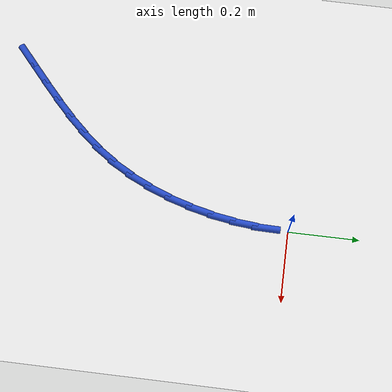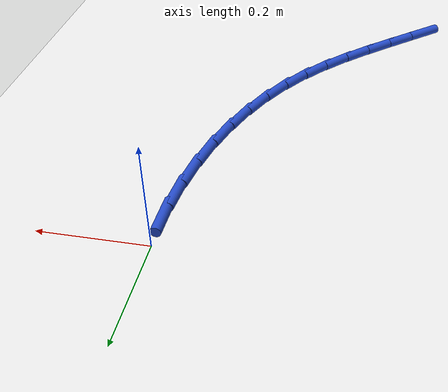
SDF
<sdf version="1.6">
 <world name="default">
  <model name="ground_plane">
   <static>1</static>
   <link name="link">
    <collision name="collision">
     <geometry><plane><normal>0 0 1</normal><size>100 100</size></plane></geometry>
     <surface><friction><ode><mu>100</mu><mu2>50</mu2></ode></friction></surface>
    </collision>
    <visual name="visual">
     <cast_shadows>0</cast_shadows>
     <geometry><plane><normal>0 0 1</normal><size>100 100</size></plane></geometry>
     <material>
      <script><uri>file://media/materials/scripts/gazebo.material</uri><name>Gazebo/WhiteGlow</name></script>
     </material>
    </visual>
   </link>
  </model>
  <model name="line">
   <link name="link_105">
    <pose>-0.4268690133879903 -0.8005623488313617 0.01 0 1.57 0.7147271185375644</pose>
    <collision name="collision">
     <geometry><cylinder><radius>0.01</radius><length>0.08</length></cylinder></geometry>
    </collision>
    <visual name="visual">
     <material>
      <script><name>Gazebo/Blue</name><uri>file://media/materials/scripts/gazebo.material</uri></script>
     </material>
     <geometry><cylinder><radius>0.01</radius><length>0.08</length></cylinder></geometry>
    </visual>
   </link>
   <link name="link_106">
    <pose>-0.3779561260713092 -0.7581166391574438 0.01 0 1.57 0.7191399702541332</pose>
    <collision name="collision">
     <geometry><cylinder><radius>0.01</radius><length>0.08</length></cylinder></geometry>
    </collision>
    <visual name="visual">
     <material>
      <script><name>Gazebo/Blue</name><uri>file://media/materials/scripts/gazebo.material</uri></script>
     </material>
     <geometry><cylinder><radius>0.01</radius><length>0.08</length></cylinder></geometry>
    </visual>
   </link>
   <link name="link_107">
    <pose>-0.3301676693796679 -0.7162755782206645 0.01 0 1.57 0.7390260195589649</pose>
    <collision name="collision">
     <geometry><cylinder><radius>0.01</radius><length>0.08</length></cylinder></geometry>
    </collision>
    <visual name="visual">
     <material>
      <script><name>Gazebo/Blue</name><uri>file://media/materials/scripts/gazebo.material</uri></script>
     </material>
     <geometry><cylinder><radius>0.01</radius><length>0.08</length></cylinder></geometry>
    </visual>
   </link>
   <link name="link_108">
    <pose>-0.28401969489721257 -0.6742206937165592 0.01 0 1.57 0.775014124234603</pose>
    <collision name="collision">
     <geometry><cylinder><radius>0.01</radius><length>0.08</length></cylinder></geometry>
    </collision>
    <visual name="visual">
     <material>
      <script><name>Gazebo/Blue</name><uri>file://media/materials/scripts/gazebo.material</uri></script>
     </material>
     <geometry><cylinder><radius>0.01</radius><length>0.08</length></cylinder></geometry>
    </visual>
   </link>
   <link name="link_109">
    <pose>-0.2400282542080915 -0.6311335133406657 0.01 0 1.57 0.8273307603376178</pose>
    <collision name="collision">
     <geometry><cylinder><radius>0.01</radius><length>0.08</length></cylinder></geometry>
    </collision>
    <visual name="visual">
     <material>
      <script><name>Gazebo/Blue</name><uri>file://media/materials/scripts/gazebo.material</uri></script>
     </material>
     <geometry><cylinder><radius>0.01</radius><length>0.08</length></cylinder></geometry>
    </visual>
   </link>
   <link name="link_110">
    <pose>-0.19870939889645106 -0.5861955647885195 0.01 0 1.57 0.89548610608476</pose>
    <collision name="collision">
     <geometry><cylinder><radius>0.01</radius><length>0.08</length></cylinder></geometry>
    </collision>
    <visual name="visual">
     <material>
      <script><name>Gazebo/Blue</name><uri>file://media/materials/scripts/gazebo.material</uri></script>
     </material>
     <geometry><cylinder><radius>0.01</radius><length>0.08</length></cylinder></geometry>
    </visual>
   </link>
   <link name="link_111">
    <pose>-0.16057918054643813 -0.5385883757556572 0.01 0 1.57 0.9778548079857701</pose>
    <collision name="collision">
     <geometry><cylinder><radius>0.01</radius><length>0.08</length></cylinder></geometry>
    </collision>
    <visual name="visual">
     <material>
      <script><name>Gazebo/Blue</name><uri>file://media/materials/scripts/gazebo.material</uri></script>
     </material>
     <geometry><cylinder><radius>0.01</radius><length>0.08</length></cylinder></geometry>
    </visual>
   </link>
   <link name="link_112">
    <pose>-0.12615254406138066 -0.48749695998817055 0.01 0 1.57 1.0657475892409827</pose>
    <collision name="collision">
     <geometry><cylinder><radius>0.01</radius><length>0.08</length></cylinder></geometry>
    </collision>
    <visual name="visual">
     <material>
      <script><name>Gazebo/Blue</name><uri>file://media/materials/scripts/gazebo.material</uri></script>
     </material>
     <geometry><cylinder><radius>0.01</radius><length>0.08</length></cylinder></geometry>
    </visual>
   </link>
   <link name="link_113">
    <pose>-0.09579267777902226 -0.4325843652335633 0.01 0 1.57 1.1467255898025637</pose>
    <collision name="collision">
     <geometry><cylinder><radius>0.01</radius><length>0.08</length></cylinder></geometry>
    </collision>
    <visual name="visual">
     <material>
      <script><name>Gazebo/Blue</name><uri>file://media/materials/scripts/gazebo.material</uri></script>
     </material>
     <geometry><cylinder><radius>0.01</radius><length>0.08</length></cylinder></geometry>
    </visual>
   </link>
   <link name="link_114">
    <pose>-0.06955791258651026 -0.37447394185560134 0.01 0 1.57 1.2211162218793814</pose>
    <collision name="collision">
     <geometry><cylinder><radius>0.01</radius><length>0.08</length></cylinder></geometry>
    </collision>
    <visual name="visual">
     <material>
      <script><name>Gazebo/Blue</name><uri>file://media/materials/scripts/gazebo.material</uri></script>
     </material>
     <geometry><cylinder><radius>0.01</radius><length>0.08</length></cylinder></geometry>
    </visual>
   </link>
   <link name="link_115">
    <pose>-0.04747009769244766 -0.3139039577025447 0.01 0 1.57 1.2906941796803362</pose>
    <collision name="collision">
     <geometry><cylinder><radius>0.01</radius><length>0.08</length></cylinder></geometry>
    </collision>
    <visual name="visual">
     <material>
      <script><name>Gazebo/Blue</name><uri>file://media/materials/scripts/gazebo.material</uri></script>
     </material>
     <geometry><cylinder><radius>0.01</radius><length>0.08</length></cylinder></geometry>
    </visual>
   </link>
   <link name="link_116">
    <pose>-0.029551082305438462 -0.2516126806226564 0.01 0 1.57 1.3571418750622057</pose>
    <collision name="collision">
     <geometry><cylinder><radius>0.01</radius><length>0.08</length></cylinder></geometry>
    </collision>
    <visual name="visual">
     <material>
      <script><name>Gazebo/Blue</name><uri>file://media/materials/scripts/gazebo.material</uri></script>
     </material>
     <geometry><cylinder><radius>0.01</radius><length>0.08</length></cylinder></geometry>
    </visual>
   </link>
   <link name="link_117">
    <pose>-0.015822715634085736 -0.18833837846419668 0.01 0 1.57 1.4220909953266627</pose>
    <collision name="collision">
     <geometry><cylinder><radius>0.01</radius><length>0.08</length></cylinder></geometry>
    </collision>
    <visual name="visual">
     <material>
      <script><name>Gazebo/Blue</name><uri>file://media/materials/scripts/gazebo.material</uri></script>
     </material>
     <geometry><cylinder><radius>0.01</radius><length>0.08</length></cylinder></geometry>
    </visual>
   </link>
   <link name="link_118">
    <pose>-0.006306846886992821 -0.12481931907542668 0.01 0 1.57 1.4871919697978289</pose>
    <collision name="collision">
     <geometry><cylinder><radius>0.01</radius><length>0.08</length></cylinder></geometry>
    </collision>
    <visual name="visual">
     <material>
      <script><name>Gazebo/Blue</name><uri>file://media/materials/scripts/gazebo.material</uri></script>
     </material>
     <geometry><cylinder><radius>0.01</radius><length>0.08</length></cylinder></geometry>
    </visual>
   </link>
   <link name="link_119">
    <pose>-0.00102532527276308 -0.06179377030460688 0.01 0 1.57 1.5542051528535625</pose>
    <collision name="collision">
     <geometry><cylinder><radius>0.01</radius><length>0.08</length></cylinder></geometry>
    </collision>
    <visual name="visual">
     <material>
      <script><name>Gazebo/Blue</name><uri>file://media/materials/scripts/gazebo.material</uri></script>
     </material>
     <geometry><cylinder><radius>0.01</radius><length>0.08</length></cylinder></geometry>
    </visual>
   </link>
  </model>
 </world>
</sdf>
